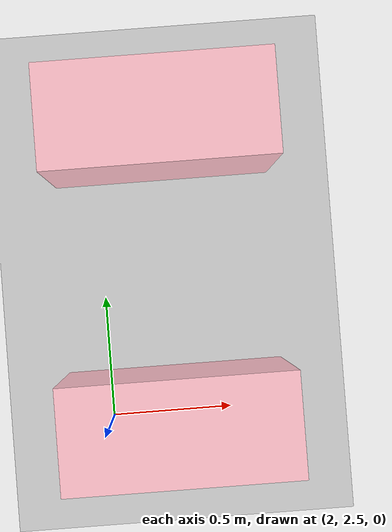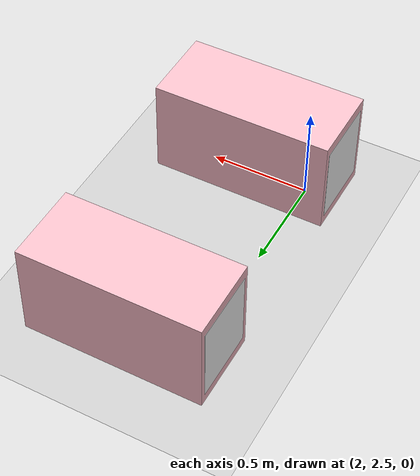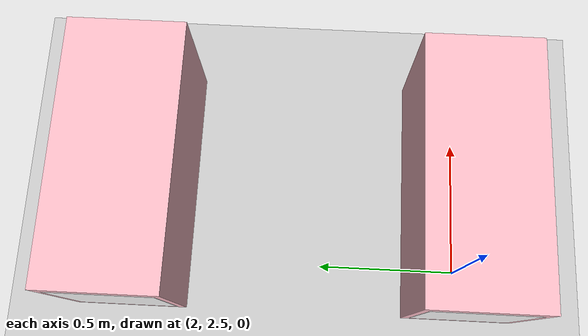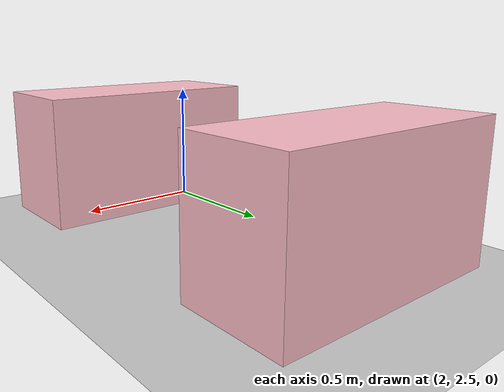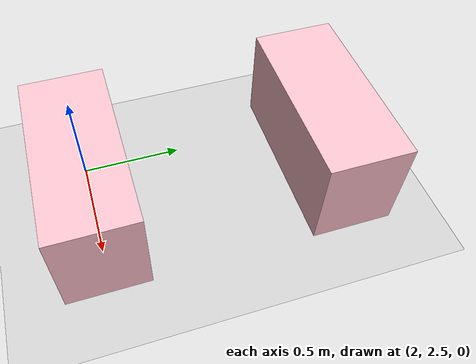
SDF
<sdf version="1.9">
 <world name="pig_pen_16units_world">
  <model name="ground_plane">
   <static>true</static>
   <link name="link">
    <collision name="collision">
     <geometry><plane><normal>0 0 1</normal><size>30 30</size></plane></geometry>
     <surface><friction><ode><mu>1.0</mu><mu2>1.0</mu2></ode></friction></surface>
    </collision>
    <visual name="visual">
     <geometry><plane><normal>0 0 1</normal><size>30 30</size></plane></geometry>
     <material>
      <ambient>0.8 0.8 0.8 1</ambient>
      <diffuse>0.8 0.8 0.8 1</diffuse>
      <specular>0.2 0.2 0.2 1</specular>
     </material>
    </visual>
   </link>
  </model>
  <include><uri>model://farm_pig</uri><name>pig13_b</name><pose>2.275 3.685 0.27 0 0 3.1416</pose></include>
  <include><uri>model://farm_pig</uri><name>pig14_a</name><pose>2.275 2.495 0.27 0 0 3.1416</pose></include>
 </world>
</sdf>
